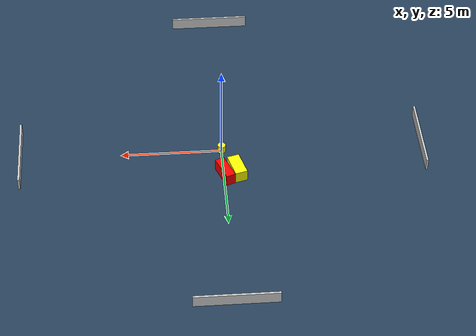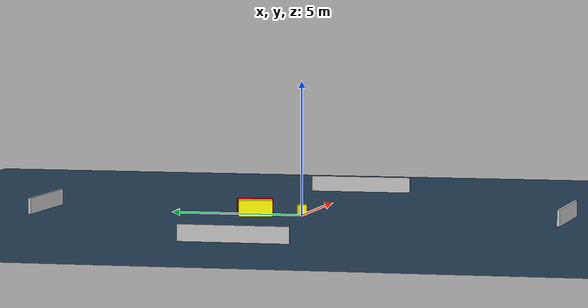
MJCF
<?xml version="1.0" ?>
<mujoco model="generated_environment">
  <option timestep="0.01" integrator="RK4" cone="elliptic"/>
  <default>
    <geom density="1"/>
  </default>
  <asset>
    <texture builtin="gradient" height="3072" name="skybox" rgb1="0.3 0.5 0.7" rgb2="0 0 0" type="skybox" width="512"/>
    <texture builtin="checker" height="300" name="groundplane" rgb1="0.2 0.3 0.4" rgb2="0.1 0.2 0.3" type="2d" width="300"/>
    <material name="groundplane" reflectance="0.2" texrepeat="5 5" texture="groundplane"/>
  </asset>
  <worldbody>
    <light dir="0 0 -1" directional="true" pos="0 0 1.5"/>
    <geom condim="3" friction="0.5 0.005 0.001" material="groundplane" name="floor" pos="0 0 0" size="0 0 0.05" type="plane"/>
    <body name="walls">
      <geom name="wall_1" condim="4" pos="-10.0 0.0 0.3" rgba="0.800000011920929 0.800000011920929 0.800000011920929 1.0" size="0.05 2.0 0.3" type="box"/>
      <geom name="wall_2" condim="4" pos="10.0 0.0 0.3" rgba="0.800000011920929 0.800000011920929 0.800000011920929 1.0" size="0.05 2.0 0.3" type="box"/>
      <geom name="wall_3" condim="4" pos="0.0 -10.0 0.3" rgba="0.800000011920929 0.800000011920929 0.800000011920929 1.0" size="2.0 0.05 0.3" type="box"/>
      <geom name="wall_4" condim="4" pos="0.0 10.0 0.3" rgba="0.800000011920929 0.800000011920929 0.800000011920929 1.0" size="2.0 0.05 0.3" type="box"/>
    </body>
    <body name="robot">
      <joint name="joint_x" type="slide" pos="0 0 0" axis="1 0 0"/>
      <joint name="joint_y" type="slide" pos="0 0 0" axis="0 1 0"/>
      <geom name="robot" type="cylinder" pos="0.0 0.0 0.2" size="0.2 0.2 0.0" mass="5.0" friction="1.0 0.005 0.0001" condim="4" rgba="1.0 1.0 0.0 1.0"/>
    </body>
    <body name="obstacle_1_movable">
      <geom name="obstacle_1_movable" condim="4" pos="-0.6546825005412354 1.6182244895980817 0.3" euler="0 0 285.72526275235424" friction="0.0 0.005 0.001" rgba="1.0 1.0 0.0 1.0" size="0.6281868869394336 0.30457944801521253 0.3" type="box" mass="0.1"/>
      <joint type="free"/>
    </body>
    <body name="obstacle_2_static">
      <geom name="obstacle_2_static" condim="4" pos="-0.05445581474725791 1.7874590545410736 0.3" euler="0 0 21.982797353833643" friction="0.0 0.005 0.001" rgba="1.0 0.0 0.0 1.0" size="0.2324151477127577 0.6558992157628099 0.3" type="box"/>
    </body>
  </worldbody>
  <actuator>
    <motor name="actuator_x" joint="joint_x" gear="1" ctrlrange="-1 1"/>
    <motor name="actuator_y" joint="joint_y" gear="1" ctrlrange="-1 1"/>
  </actuator>
</mujoco>
